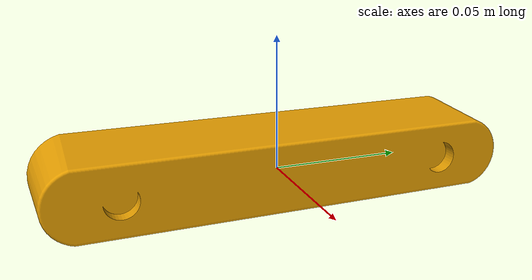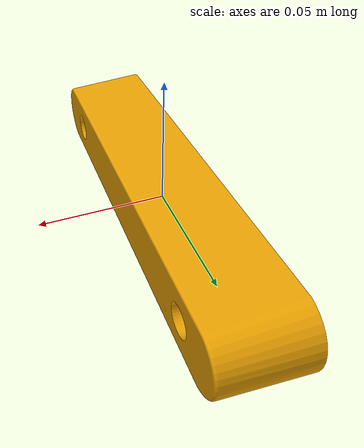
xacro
<?xml version="1.0" ?>
  <robot name="Zed_sim" xmlns:xacro="http://www.ros.org/wiki/xacro">
  <xacro:include filename="$(find zed_sim_package)/urdf/zed_sim.gazebo"/>

  <link name="zed_sim">
	<inertial>
	  <mass value="0.159"/>
	  <inertia ixx="0.4" ixy="0.0" ixz="0.0" iyy="0.4" iyz="0.0" izz="0.2"/>
	</inertial>
	<collision>
	  <origin xyz="0 0 0.0 " rpy="0 0 0 "/>
	  <geometry>
		<box size="0.03 0.175 0.033"/>
	  </geometry>
	</collision>
	<visual>
	  <origin xyz="-0.02 -0.0875 -0.0125 " rpy="1.5707963 0 1.5707963"/>
	  <geometry>
	     <mesh filename="package://zed_sim_package/mesh/zed_body.stl" scale="0.001 0.001 0.001"/>
	  </geometry>
	</visual>

  </link>
</robot>
